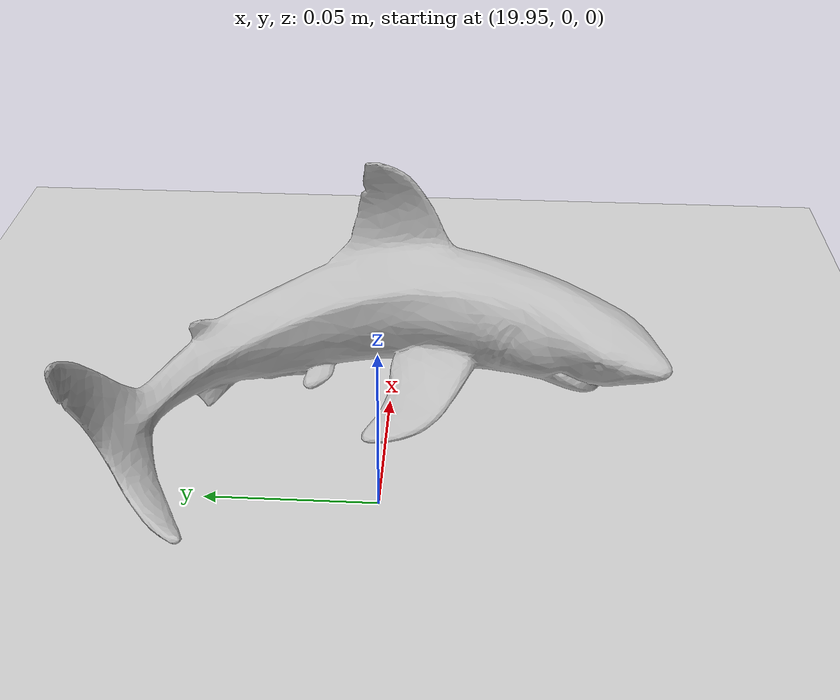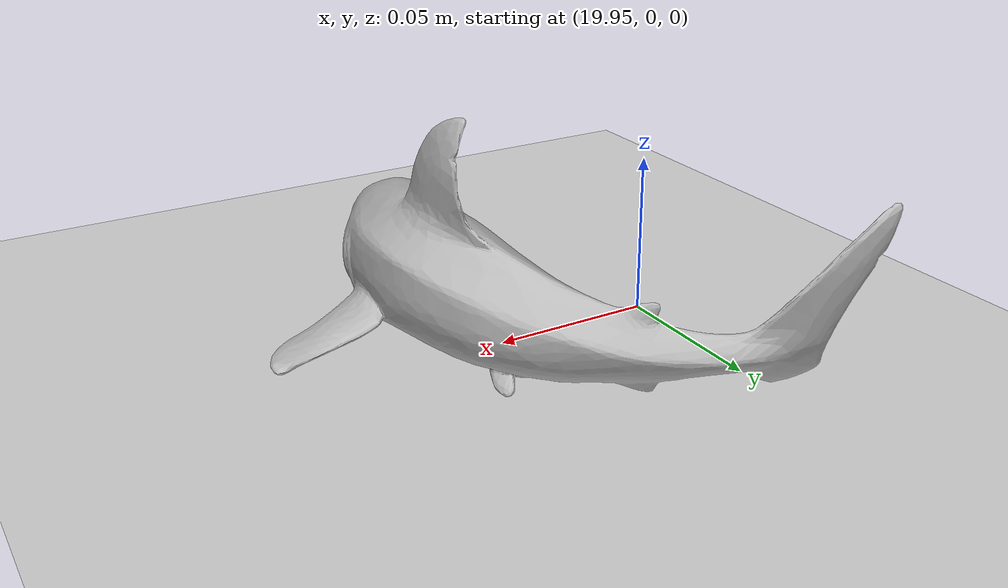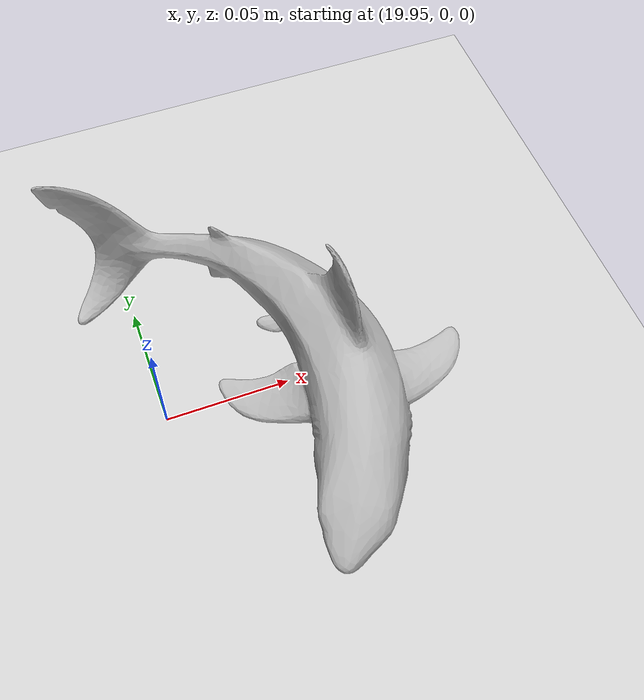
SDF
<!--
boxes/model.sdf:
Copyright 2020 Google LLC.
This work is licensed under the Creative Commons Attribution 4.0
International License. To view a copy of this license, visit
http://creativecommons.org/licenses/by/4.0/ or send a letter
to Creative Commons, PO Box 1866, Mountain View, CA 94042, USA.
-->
<?xml version="1.0"?>
<sdf version="1.6">
  <world name="default">
    <include>
      <uri>model://sun</uri>
    </include>
    <include>
      <uri>model://ground_plane</uri>
    </include>
    <include>
      <uri>model://boxes</uri>
      <pose>20 0 0 0 0 0</pose>
    </include>
  </world>
</sdf>

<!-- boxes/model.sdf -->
<sdf version="1.6">
  <model name="boxes">
    <static>true</static>
    <link name="link_0">
      <visual name="visual">
        <geometry>
          <mesh>
            <uri>meshes/model.obj</uri>
          </mesh>
        </geometry>
      </visual>
    </link>
  </model>
</sdf>
